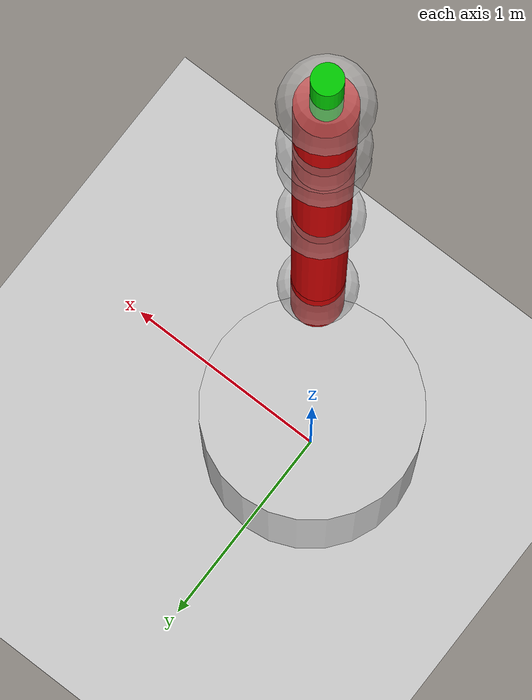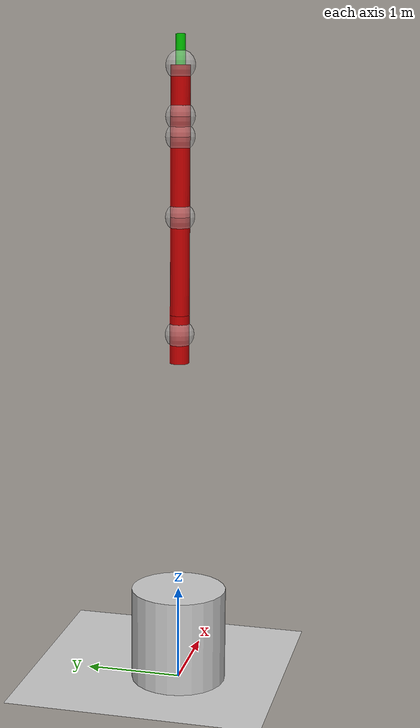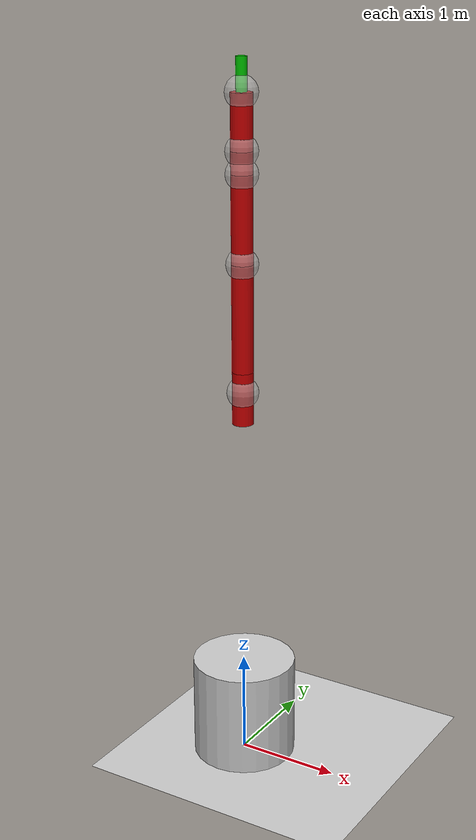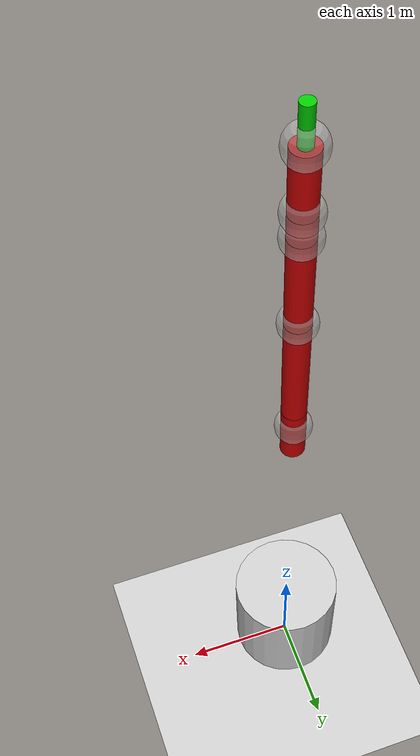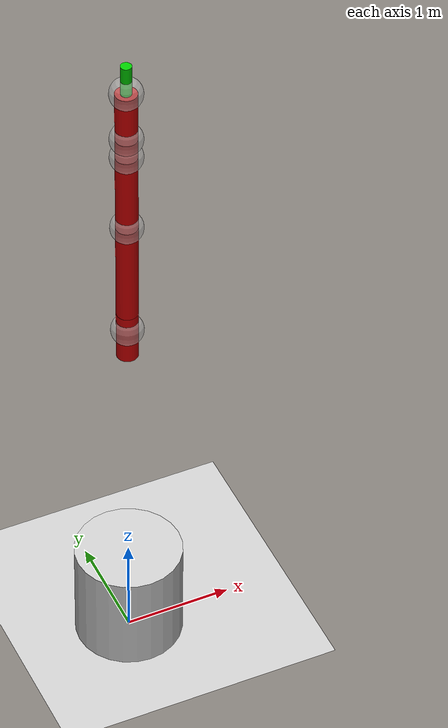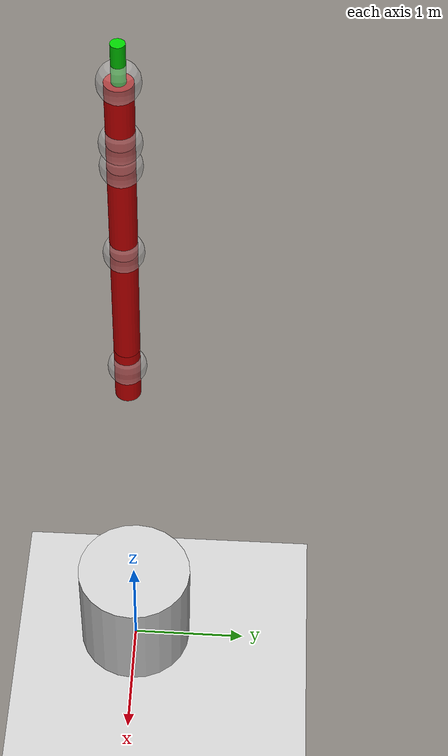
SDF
<?xml version="1.0"?>
<sdf version="1.6">
    <world name="empty">
        <physics name="1ms" type="ignored">
            <max_step_size>0.001</max_step_size>
            <real_time_factor>1.0</real_time_factor>
        </physics>
        <plugin filename="gz-sim-physics-system" name="gz::sim::systems::Physics"></plugin>
        <plugin filename="gz-sim-user-commands-system"
            name="gz::sim::systems::UserCommands"></plugin>
        <plugin filename="gz-sim-scene-broadcaster-system"
            name="gz::sim::systems::SceneBroadcaster"></plugin>
        <plugin filename="gz-sim-contact-system" name="gz::sim::systems::Contact"></plugin>

        <light type="directional" name="sun">
            <cast_shadows>true</cast_shadows>
            <pose>0 0 10 0 0 0</pose>
            <diffuse>0.8 0.8 0.8 1</diffuse>
            <specular>0.2 0.2 0.2 1</specular>
            <attenuation>
                <range>1000</range>
                <constant>0.9</constant>
                <linear>0.01</linear>
                <quadratic>0.001</quadratic>
            </attenuation>
            <direction>-0.5 0.1 -0.9</direction>
        </light>

        <model name="ground_plane">
            <static>true</static>
            <link name="link">
                <collision name="collision">
                    <geometry>
                        <plane>
                            <normal>0 0 1</normal>
                            <size>100 100</size>
                        </plane>
                    </geometry>
                </collision>
                <visual name="visual">
                    <geometry>
                        <plane>
                            <normal>0 0 1</normal>
                            <size>100 100</size>
                        </plane>
                    </geometry>
                    <material>
                        <ambient>0.8 0.8 0.8 1</ambient>
                        <diffuse>0.8 0.8 0.8 1</diffuse>
                        <specular>0.8 0.8 0.8 1</specular>
                    </material>
                </visual>
            </link>
        </model>

        <model name="printerArm">
            <pose>0 0 0.5 0 0 0</pose>
            <link name="base_link">
                <collision name='base_link_collision_0'>
                    <laser_retro>0</laser_retro>
                    <max_contacts>10</max_contacts>
                    <pose>0 0 0 0 -0 0</pose>
                    <geometry>
                        <cylinder>
                            <radius>0.5</radius>
                            <length>1</length>
                        </cylinder>
                    </geometry>
                </collision>
                <collision name="base_link_collision_1">
                    <geometry>
                        <sphere>
                            <radius>0.15</radius>
                        </sphere>
                    </geometry>
                </collision>
                <visual name='base_link_visual_0'>
                    <pose>0 0 0 0 0 0</pose>
                    <geometry>
                        <cylinder>
                            <radius>0.5</radius>
                            <length>1</length>
                        </cylinder>
                    </geometry>
                    <material>
                        <ambient>0.5 0.5 0.5 1</ambient>
                        <diffuse>0.8 0.8 0.8 1</diffuse>
                        <specular>0.8 0.8 0.8 1</specular>
                    </material>
                    <transparency>0</transparency>
                    <cast_shadows>1</cast_shadows>
                </visual>
                <visual name="base_link_visual_1">
                    <pose> 0 0 0.1 0 0 0</pose>
                    <geometry>
                        <sphere>
                            <radius>0.15</radius>
                        </sphere>
                    </geometry>
                    <material>
                        <ambient>0.5 0.5 0.5 1</ambient>
                        <diffuse>0.8 0.8 0.8 1</diffuse>
                        <specular>0.8 0.8 0.8 1</specular>
                    </material>
                    <transparency>0.5</transparency>
                </visual>
                <inertial>
                    <mass>10000000000</mass>
                    <inertia>
                        <ixx>0.0003358</ixx>
                        <iyy>0.0003358</iyy>
                        <izz>0.000005</izz>
                    </inertia>
                </inertial>
            </link>

            <link name="link1">
                <pose relative_to="joint1">0 0 0.2 0 0 0</pose>
                <collision name="link1_collision_0">
                    <geometry>
                        <cylinder>
                            <radius>0.1</radius>
                            <length>0.5</length>
                        </cylinder>
                    </geometry>
                </collision>
                <collision name="link1_collision_1">
                    <geometry>
                        <sphere>
                            <radius>0.15</radius>
                        </sphere>
                    </geometry>
                </collision>
                <visual name="link1_visual_0">
                    <geometry>
                        <cylinder>
                            <radius>0.1</radius>
                            <length>0.5</length>
                        </cylinder>
                    </geometry>
                    <material>
                        <ambient>0.5 0 0 1</ambient>
                        <diffuse>0.8 0 0 1</diffuse>
                        <specular>0.8 0 0 1</specular>
                    </material>
                </visual>
                <visual name="link1_visual_1">
                    <pose relative_to="joint1">0 0 0.25 0 0 0</pose>
                    <geometry>
                        <sphere>
                            <radius>0.15</radius>
                        </sphere>
                    </geometry>
                    <material>
                        <ambient>0.5 0.5 0.5 1</ambient>
                        <diffuse>0.8 0.8 0.8 1</diffuse>
                        <specular>0.8 0.8 0.8 1</specular>
                    </material>
                    <transparency>0.5</transparency>
                </visual>
                <inertial>
                    <mass>0.00001</mass>
                    <inertia>
                        <ixx>0.0003358</ixx>
                        <iyy>0.0003358</iyy>
                        <izz>0.000005</izz>
                    </inertia>
                </inertial>
            </link>

            <link name="link2">
                <pose relative_to="joint2">0 0 0.5 0 0 0</pose>
                <collision name="link2_collision_0">
                    <geometry>
                        <cylinder>
                            <radius>0.1</radius>
                            <length>1</length>
                        </cylinder>
                    </geometry>
                </collision>
                <collision name="link2_collision_1">
                    <geometry>
                        <sphere>
                            <radius>0.15</radius>
                        </sphere>
                    </geometry>
                </collision>
                <visual name="link2_visual_0">
                    <geometry>
                        <cylinder>
                            <radius>0.1</radius>
                            <length>1</length>
                        </cylinder>
                    </geometry>
                    <material>
                        <ambient>0.5 0 0 1</ambient>
                        <diffuse>0.8 0 0 1</diffuse>
                        <specular>0.8 0 0 1</specular>
                    </material>
                </visual>
                <visual name="link2_visual_1">
                    <pose relative_to="joint2">0 0 1 0 0 0</pose>
                    <geometry>
                        <sphere>
                            <radius>0.15</radius>
                        </sphere>
                    </geometry>
                    <material>
                        <ambient>0.5 0.5 0.5 1</ambient>
                        <diffuse>0.8 0.8 0.8 1</diffuse>
                        <specular>0.8 0.8 0.8 1</specular>
                    </material>
                    <transparency>0.5</transparency>
                </visual>
                <inertial>
                    <mass>0.00001</mass>
                    <inertia>
                        <ixx>0.0003358</ixx>
                        <iyy>0.0003358</iyy>
                        <izz>0.000005</izz>
                    </inertia>
                </inertial>
            </link>

            <link name="link3">
                <pose relative_to="joint3">0 0 0.4 0 0 0</pose>
                <collision name="link3_collision_0">
                    <geometry>
                        <cylinder>
                            <radius>0.1</radius>
                            <length>0.8</length>
                        </cylinder>
                    </geometry>
                </collision>
                <collision name="link3_collision_1">
                    <geometry>
                        <sphere>
                            <radius>0.15</radius>
                        </sphere>
                    </geometry>
                </collision>
                <visual name="link3_visual_0">
                    <geometry>
                        <cylinder>
                            <radius>0.1</radius>
                            <length>0.8</length>
                        </cylinder>
                    </geometry>
                    <material>
                        <ambient>0.5 0 0 1</ambient>
                        <diffuse>0.8 0 0 1</diffuse>
                        <specular>0.8 0 0 1</specular>
                    </material>
                </visual>
                <visual name="link3_visual_1">
                    <pose relative_to="joint3">0 0 0.8 0 0 0</pose>
                    <geometry>
                        <sphere>
                            <radius>0.15</radius>
                        </sphere>
                    </geometry>
                    <material>
                        <ambient>0.5 0.5 0.5 1</ambient>
                        <diffuse>0.8 0.8 0.8 1</diffuse>
                        <specular>0.8 0.8 0.8 1</specular>
                    </material>
                    <transparency>0.5</transparency>
                </visual>
                <inertial>
                    <mass>0.00001</mass>
                    <inertia>
                        <ixx>0.0003358</ixx>
                        <iyy>0.0003358</iyy>
                        <izz>0.000005</izz>
                    </inertia>
                </inertial>
            </link>

            <link name="link4">
                <pose relative_to="joint4">0 0 0.1 0 0 0</pose>
                <collision name="link4_collision_0">
                    <geometry>
                        <cylinder>
                            <radius>0.1</radius>
                            <length>0.2</length>
                        </cylinder>
                    </geometry>
                </collision>
                <collision name="link4_collision_1">
                    <geometry>
                        <sphere>
                            <radius>0.15</radius>
                        </sphere>
                    </geometry>
                </collision>
                <visual name="link4_visual_0">
                    <geometry>
                        <cylinder>
                            <radius>0.1</radius>
                            <length>0.2</length>
                        </cylinder>
                    </geometry>
                    <material>
                        <ambient>0.5 0 0 1</ambient>
                        <diffuse>0.8 0 0 1</diffuse>
                        <specular>0.8 0 0 1</specular>
                    </material>
                </visual>
                <visual name="link4_visual_1">
                    <pose relative_to="joint4">0 0 0.2 0 0 0</pose>
                    <geometry>
                        <sphere>
                            <radius>0.15</radius>
                        </sphere>
                    </geometry>
                    <material>
                        <ambient>0.5 0.5 0.5 1</ambient>
                        <diffuse>0.8 0.8 0.8 1</diffuse>
                        <specular>0.8 0.8 0.8 1</specular>
                    </material>
                    <transparency>0.5</transparency>
                </visual>
                <inertial>
                    <mass>0.00001</mass>
                    <inertia>
                        <ixx>0.0003358</ixx>
                        <iyy>0.0003358</iyy>
                        <izz>0.000005</izz>
                    </inertia>
                </inertial>
            </link>

            <link name="link5">
                <pose relative_to="joint5">0 0 0.25 0 0 0</pose>
                <collision name="link3_collision_0">
                    <geometry>
                        <cylinder>
                            <radius>0.1</radius>
                            <length>0.5</length>
                        </cylinder>
                    </geometry>
                </collision>
                <collision name="link3_collision_1">
                    <geometry>
                        <sphere>
                            <radius>0.15</radius>
                        </sphere>
                    </geometry>
                </collision>
                <visual name="link3_visual_0">
                    <geometry>
                        <cylinder>
                            <radius>0.1</radius>
                            <length>0.5</length>
                        </cylinder>
                    </geometry>
                    <material>
                        <ambient>0.5 0 0 1</ambient>
                        <diffuse>0.8 0 0 1</diffuse>
                        <specular>0.8 0 0 1</specular>
                    </material>
                </visual>
                <visual name="link3_visual_1">
                    <pose relative_to="joint5">0 0 0.5 0 0 0</pose>
                    <geometry>
                        <sphere>
                            <radius>0.15</radius>
                        </sphere>
                    </geometry>
                    <material>
                        <ambient>0.5 0.5 0.5 1</ambient>
                        <diffuse>0.8 0.8 0.8 1</diffuse>
                        <specular>0.8 0.8 0.8 1</specular>
                    </material>
                    <transparency>0.5</transparency>
                </visual>
                <inertial>
                    <mass>0.00001</mass>
                    <inertia>
                        <ixx>0.0003358</ixx>
                        <iyy>0.0003358</iyy>
                        <izz>0.000005</izz>
                    </inertia>
                </inertial>
            </link>

            <link name="link6">
                <pose relative_to="joint6">0 0 0.05 0 0 0</pose>
                <collision name="link3_collision_0">
                    <geometry>
                        <cylinder>
                            <radius>0.05</radius>
                            <length>0.5</length>
                        </cylinder>
                    </geometry>
                </collision>
                <visual name="link3_visual_0">
                    <geometry>
                        <cylinder>
                            <radius>0.05</radius>
                            <length>0.5</length>
                        </cylinder>
                    </geometry>
                    <material>
                        <ambient>0 0.5 0 1</ambient>
                        <diffuse>0 0.8 0 1</diffuse>
                        <specular>0 0.8 0 1</specular>
                    </material>
                </visual>
                <inertial>
                    <mass>0.00001</mass>
                    <inertia>
                        <ixx>0.0003358</ixx>
                        <iyy>0.0003358</iyy>
                        <izz>0.000005</izz>
                    </inertia>
                </inertial>
            </link>

            <joint name="joint1" type="revolute">
                <pose relative_to="base_link">0 0 3 0 0 0</pose>
                <parent>base_link</parent>
                <child>link1</child>
                <axis>
                    <xyz>0 0 1</xyz>
                    <dynamics>
                        <damping>0.5</damping>
                    </dynamics>
                </axis>
            </joint>

            <joint name="joint2" type="revolute">
                <pose relative_to="link1">0 0 0.25 0 0 0</pose>
                <parent>link1</parent>
                <child>link2</child>
                <axis>
                    <xyz>1 0 0</xyz>
                    <dynamics>
                        <damping>0.5</damping>
                    </dynamics>
                </axis>
            </joint>

            <joint name="joint3" type="revolute">
                <pose relative_to="link2">0 0 0.5 0 0 0</pose>
                <parent>link2</parent>
                <child>link3</child>
                <axis>
                    <xyz>1 0 0</xyz>
                    <dynamics>
                        <damping>0.5</damping>
                    </dynamics>
                </axis>
            </joint>

            <joint name="joint4" type="revolute">
                <pose relative_to="link3">0 0 0.4 0 0 0</pose>
                <parent>link3</parent>
                <child>link4</child>
                <axis>
                    <xyz>1 0 0</xyz>
                    <dynamics>
                        <damping>0.5</damping>
                    </dynamics>
                </axis>
            </joint>

            <joint name="joint5" type="revolute">
                <pose relative_to="link4">0 0 0.1 0 0 0</pose>
                <parent>link4</parent>
                <child>link5</child>
                <axis>
                    <xyz>0 0 1</xyz>
                    <dynamics>
                        <damping>0.5</damping>
                    </dynamics>
                </axis>
            </joint>

            <joint name="joint6" type="revolute">
                <pose relative_to="link5">0 0 0.25 0 0 0</pose>
                <parent>link5</parent>
                <child>link6</child>
                <axis>
                    <xyz>1 0 0</xyz>
                    <dynamics>
                        <damping>0.5</damping>
                    </dynamics>
                </axis>
            </joint>

            <plugin
                filename="gz-sim-joint-trajectory-controller-system"
                name="gz::sim::systems::JointTrajectoryController">
                <joint_name>joint1</joint_name>
                <initial_position>0</initial_position>
                <position_p_gain>0.5</position_p_gain>
                <position_i_gain>0</position_i_gain>
                <position_d_gain>0.5</position_d_gain>
                <position_i_min>-1</position_i_min>
                <position_i_max>1</position_i_max>
                <position_cmd_min>-20</position_cmd_min>
                <position_cmd_max>20</position_cmd_max>

                <joint_name>joint2</joint_name>
                <initial_position>0</initial_position>
                <position_p_gain>0.5</position_p_gain>
                <position_i_gain>0</position_i_gain>
                <position_d_gain>0.5</position_d_gain>
                <position_i_min>-1</position_i_min>
                <position_i_max>1</position_i_max>
                <position_cmd_min>-10</position_cmd_min>
                <position_cmd_max>10</position_cmd_max>

                <joint_name>joint3</joint_name>
                <initial_position>0</initial_position>
                <position_p_gain>0.5</position_p_gain>
                <position_i_gain>0</position_i_gain>
                <position_d_gain>0.5</position_d_gain>
                <position_i_min>-1</position_i_min>
                <position_i_max>1</position_i_max>
                <position_cmd_min>-10</position_cmd_min>
                <position_cmd_max>10</position_cmd_max>

                <joint_name>joint4</joint_name>
                <initial_position>0</initial_position>
                <position_p_gain>0.5</position_p_gain>
                <position_i_gain>0</position_i_gain>
                <position_d_gain>0.5</position_d_gain>
                <position_i_min>-1</position_i_min>
                <position_i_max>1</position_i_max>
                <position_cmd_min>-10</position_cmd_min>
                <position_cmd_max>10</position_cmd_max>

                <joint_name>joint5</joint_name>
                <initial_position>0</initial_position>
                <position_p_gain>0.5</position_p_gain>
                <position_i_gain>0</position_i_gain>
                <position_d_gain>0.5</position_d_gain>
                <position_i_min>-1</position_i_min>
                <position_i_max>1</position_i_max>
                <position_cmd_min>-10</position_cmd_min>
                <position_cmd_max>10</position_cmd_max>

                <joint_name>joint6</joint_name>
                <initial_position>0</initial_position>
                <position_p_gain>0.5</position_p_gain>
                <position_i_gain>0</position_i_gain>
                <position_d_gain>0.5</position_d_gain>
                <position_i_min>-1</position_i_min>
                <position_i_max>1</position_i_max>
                <position_cmd_min>-10</position_cmd_min>
                <position_cmd_max>10</position_cmd_max>
            </plugin>

        </model>

    </world>
</sdf>
